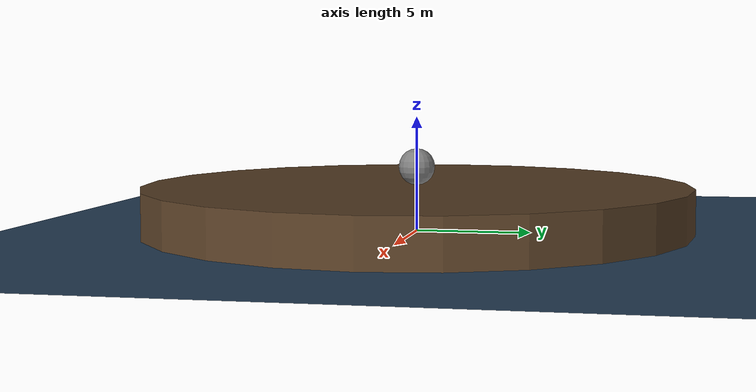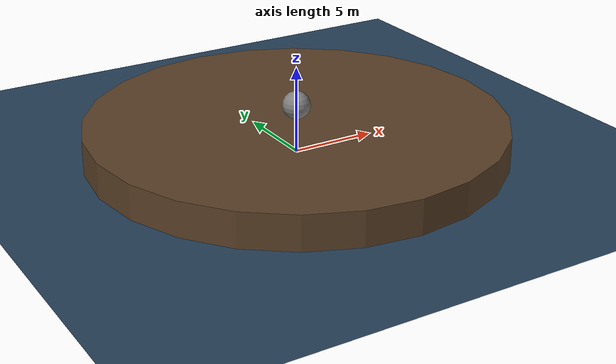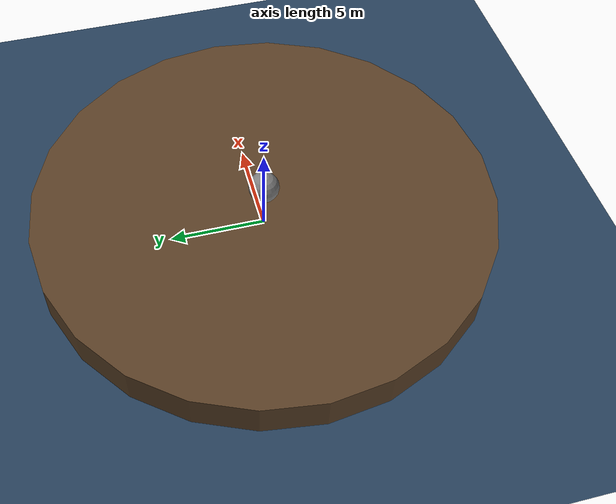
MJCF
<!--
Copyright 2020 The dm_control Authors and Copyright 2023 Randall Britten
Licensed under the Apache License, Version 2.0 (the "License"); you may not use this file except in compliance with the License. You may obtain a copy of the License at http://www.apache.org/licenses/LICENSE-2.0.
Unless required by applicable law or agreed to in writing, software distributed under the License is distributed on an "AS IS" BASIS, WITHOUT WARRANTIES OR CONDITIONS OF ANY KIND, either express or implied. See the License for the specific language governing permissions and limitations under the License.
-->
<mujoco model="Ball on Turntable">
  <option integrator="RK4" noslip_iterations="100" />
  <asset>
    <texture name="grid_floor" type="2d" builtin="checker" rgb1=".1 .2 .3" rgb2=".2 .3 .4" width="300" height="300"/>
    <material name="grid_floor" texture="grid_floor" texrepeat="8 8" reflectance=".2"/>

    <texture name="grid_turntable" type="2d" builtin="checker" rgb1=".3 .2 .1" rgb2=".4 .3 .2" width="300" height="300"/>
    <material name="grid_turntable" texture="grid_turntable" texrepeat="4 4" reflectance=".2"/>

    <texture name="grid_ball" type="2d" builtin="checker" rgb1="1 1 1" rgb2="0 0 0" width="100" height="100"/>
    <material name="grid_ball" texture="grid_ball" texrepeat="1 1" reflectance=".2"/>
  </asset>
  <worldbody>
    <geom size="50 50 .01" type="plane" material="grid_floor"/>
    <light pos="0 5 20"/>
    <light directional="true" castshadow="false"/>
    <camera name="closeup" pos="0 -35 35" xyaxes="1 0 0 0 1 1"/>
    <body name="ball1" pos="0 0 2.81">
      <freejoint/>
      <geom name="ball1_geom" type="sphere" size="0.8" material="grid_ball" />
    </body>
    <body name="turntable" pos="0 0 1.01">
      <joint name="axle" type="hinge" axis="0 0 1" pos="0 0 0"/>
      <geom name="turntable_geom" type="cylinder" pos="0 0 0" size="12 1" material="grid_turntable"/>
    </body>
  </worldbody>
  <keyframe>
    <key name="spinning"
    qpos="4 0 2.81 0 0 0 0 0"
    qvel="0 0 0 25 0 0 5" />
  </keyframe>
  <actuator>
    <velocity name="velocity_ttbl" joint="axle" kv="1e5" ctrlrange="5 6" ctrllimited="true" />
  </actuator>
</mujoco>
